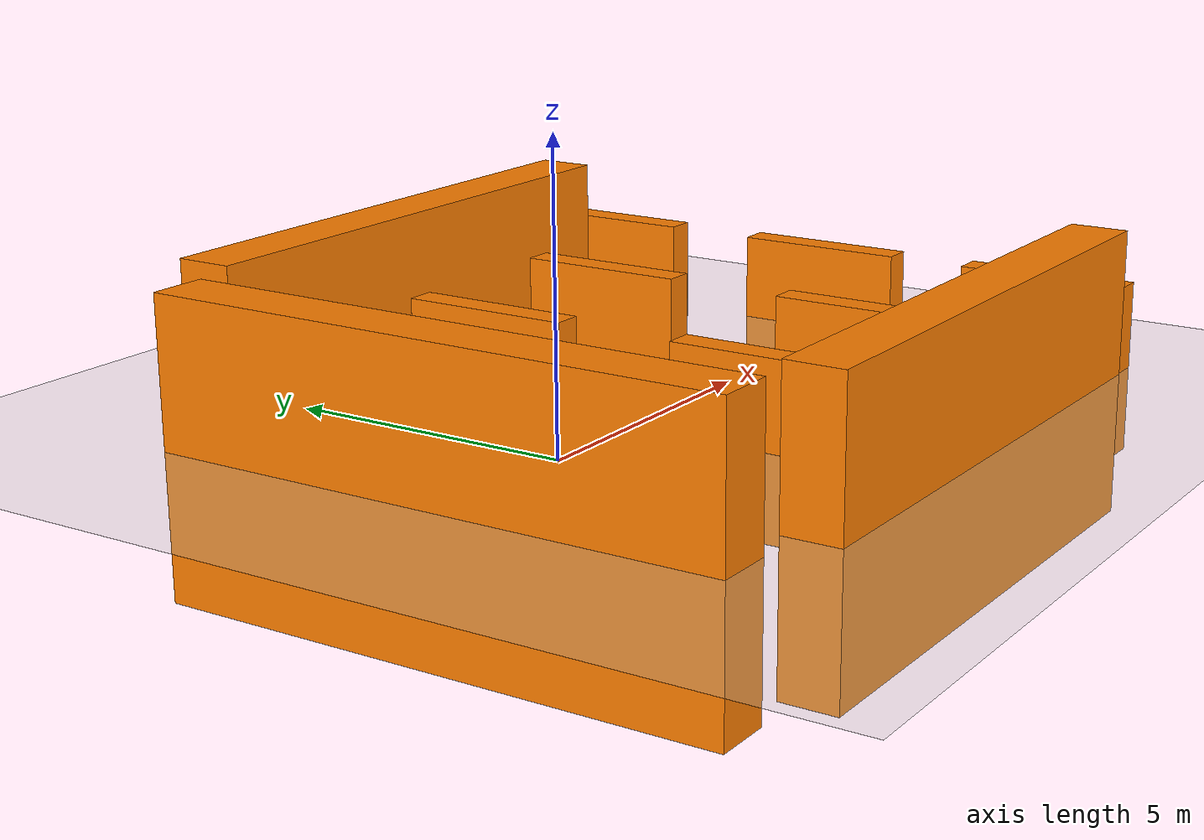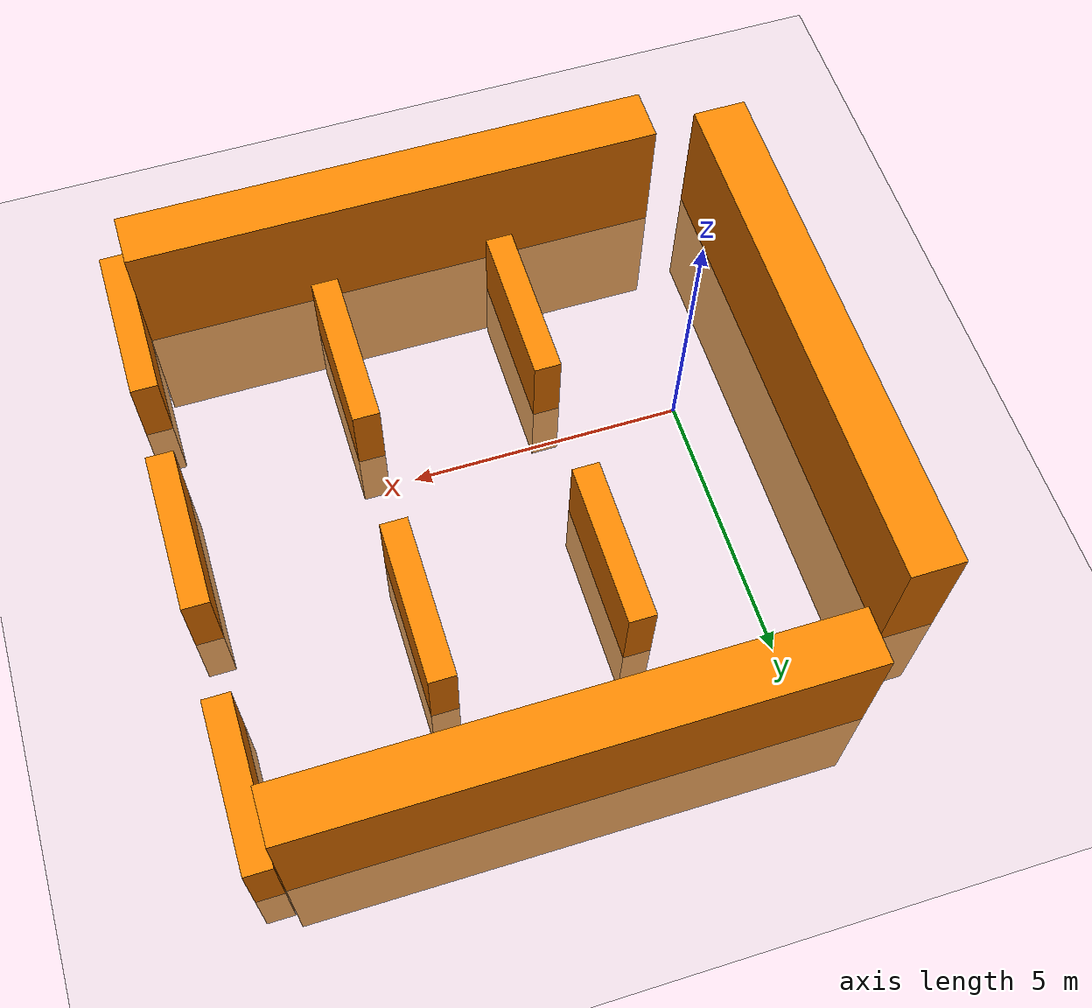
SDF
<sdf version="1.7">
 <world name="default">
  <light name="sun" type="directional">
   <pose>0 0 10 0 -0 0</pose>
   <diffuse>0.8 0.8 0.8 1</diffuse>
   <specular>0.2 0.2 0.2 1</specular>
   <attenuation>
    <range>1000</range>
    <constant>0.9</constant>
    <linear>0.01</linear>
    <quadratic>0.001</quadratic>
   </attenuation>
   <direction>-0.5 0.1 -0.9</direction>
   <spot><inner_angle>0</inner_angle><outer_angle>0</outer_angle><falloff>0</falloff></spot>
  </light>
  <model name="ground_plane">
   <static>1</static>
   <link name="link">
    <collision name="collision">
     <geometry><plane><normal>0 0 1</normal><size>100 100</size></plane></geometry>
     <surface>
      <contact><collide_bitmask>65535</collide_bitmask></contact>
      <friction><ode><mu>100</mu><mu2>50</mu2></ode></friction>
     </surface>
    </collision>
    <visual name="visual">
     <cast_shadows>0</cast_shadows>
     <geometry><plane><normal>0 0 1</normal><size>100 100</size></plane></geometry>
     <material>
      <script><uri>file://media/materials/scripts/gazebo.material</uri><name>Gazebo/Grey</name></script>
     </material>
    </visual>
   </link>
  </model>
  <gravity>0 0 -9.8</gravity>
  <magnetic_field>6e-06 2.3e-05 -4.2e-05</magnetic_field>
  <atmosphere type="adiabatic"/>
  <physics type="ode">
   <max_step_size>0.001</max_step_size>
   <real_time_factor>1</real_time_factor>
   <real_time_update_rate>1000</real_time_update_rate>
  </physics>
  <scene><ambient>0.4 0.4 0.4 1</ambient><background>0.7 0.7 0.7 1</background><shadows>1</shadows></scene>
  <audio><device>default</device></audio>
  <spherical_coordinates>
   <surface_model>EARTH_WGS84</surface_model>
   <latitude_deg>0</latitude_deg>
   <longitude_deg>0</longitude_deg>
   <elevation>0</elevation>
   <heading_deg>0</heading_deg>
  </spherical_coordinates>
  <model name="wall">
   <link name="link">
    <inertial>
     <mass>10000</mass>
     <inertia><ixx>1666.67</ixx><ixy>0</ixy><ixz>0</ixz><iyy>1666.67</iyy><iyz>0</iyz><izz>1666.67</izz></inertia>
    </inertial>
    <self_collide>1</self_collide>
    <kinematic>1</kinematic>
    <visual name="visual">
     <geometry><box><size>1 10 5</size></box></geometry>
     <material>
      <script><name>Gazebo/Grey</name><uri>file://media/materials/scripts/gazebo.material</uri></script>
      <shader type="pixel"><normal_map>__default__</normal_map></shader>
      <ambient>1 0.5 0 1</ambient>
      <diffuse>1 0.5 0 1</diffuse>
      <specular>0.2 0.1 0 1</specular>
      <emissive>0.1 0.05 0 1</emissive>
     </material>
    </visual>
    <collision name="collision">
     <geometry><box><size>1 10 5</size></box></geometry>
     <surface>
      <friction>
       <ode><mu>1</mu><mu2>1</mu2><fdir1>0 0 0</fdir1><slip1>0</slip1><slip2>0</slip2></ode>
       <torsional>
        <coefficient>1</coefficient>
        <patch_radius>0</patch_radius>
        <surface_radius>0</surface_radius>
        <use_patch_radius>1</use_patch_radius>
        <ode><slip>0</slip></ode>
       </torsional>
      </friction>
      <bounce><restitution_coefficient>0</restitution_coefficient><threshold>1e+06</threshold></bounce>
      <contact>
       <collide_without_contact>0</collide_without_contact>
       <collide_without_contact_bitmask>1</collide_without_contact_bitmask>
       <collide_bitmask>1</collide_bitmask>
       <ode>
        <soft_cfm>0</soft_cfm>
        <soft_erp>0.2</soft_erp>
        <kp>1e+13</kp>
        <kd>1</kd>
        <max_vel>0.01</max_vel>
        <min_depth>0</min_depth>
       </ode>
       <bullet>
        <split_impulse>1</split_impulse>
        <split_impulse_penetration_threshold>-0.01</split_impulse_penetration_threshold>
        <soft_cfm>0</soft_cfm>
        <soft_erp>0.2</soft_erp>
        <kp>1e+13</kp>
        <kd>1</kd>
       </bullet>
      </contact>
     </surface>
    </collision>
   </link>
   <static>0</static>
   <pose>-2.3342 0.361552 0 0 -0 0</pose>
  </model>
  <model name="wall_0">
   <link name="link">
    <inertial>
     <mass>10000</mass>
     <inertia><ixx>1666.67</ixx><ixy>0</ixy><ixz>0</ixz><iyy>1666.67</iyy><iyz>0</iyz><izz>1666.67</izz></inertia>
    </inertial>
    <self_collide>1</self_collide>
    <kinematic>1</kinematic>
    <visual name="visual">
     <geometry><box><size>1 10 5</size></box></geometry>
     <material>
      <script><name>Gazebo/Grey</name><uri>file://media/materials/scripts/gazebo.material</uri></script>
      <shader type="pixel"><normal_map>__default__</normal_map></shader>
      <ambient>1 0.5 0 1</ambient>
      <diffuse>1 0.5 0 1</diffuse>
      <specular>0.2 0.1 0 1</specular>
      <emissive>0.1 0.05 0 1</emissive>
     </material>
    </visual>
    <collision name="collision">
     <geometry><box><size>1 10 5</size></box></geometry>
     <surface>
      <friction>
       <ode><mu>1</mu><mu2>1</mu2><fdir1>0 0 0</fdir1><slip1>0</slip1><slip2>0</slip2></ode>
       <torsional>
        <coefficient>1</coefficient>
        <patch_radius>0</patch_radius>
        <surface_radius>0</surface_radius>
        <use_patch_radius>1</use_patch_radius>
        <ode><slip>0</slip></ode>
       </torsional>
      </friction>
      <bounce><restitution_coefficient>0</restitution_coefficient><threshold>1e+06</threshold></bounce>
      <contact>
       <collide_without_contact>0</collide_without_contact>
       <collide_without_contact_bitmask>1</collide_without_contact_bitmask>
       <collide_bitmask>1</collide_bitmask>
       <ode>
        <soft_cfm>0</soft_cfm>
        <soft_erp>0.2</soft_erp>
        <kp>1e+13</kp>
        <kd>1</kd>
        <max_vel>0.01</max_vel>
        <min_depth>0</min_depth>
       </ode>
       <bullet>
        <split_impulse>1</split_impulse>
        <split_impulse_penetration_threshold>-0.01</split_impulse_penetration_threshold>
        <soft_cfm>0</soft_cfm>
        <soft_erp>0.2</soft_erp>
        <kp>1e+13</kp>
        <kd>1</kd>
       </bullet>
      </contact>
     </surface>
    </collision>
   </link>
   <static>0</static>
   <pose>4.0098 6.11468 0 0 0 -1.57203</pose>
  </model>
  <model name="wall_0_clone">
   <link name="link">
    <inertial>
     <mass>10000</mass>
     <inertia><ixx>1666.67</ixx><ixy>0</ixy><ixz>0</ixz><iyy>1666.67</iyy><iyz>0</iyz><izz>1666.67</izz></inertia>
    </inertial>
    <self_collide>1</self_collide>
    <kinematic>1</kinematic>
    <visual name="visual">
     <geometry><box><size>1 10 5</size></box></geometry>
     <material>
      <script><name>Gazebo/Grey</name><uri>file://media/materials/scripts/gazebo.material</uri></script>
      <shader type="pixel"><normal_map>__default__</normal_map></shader>
      <ambient>1 0.5 0 1</ambient>
      <diffuse>1 0.5 0 1</diffuse>
      <specular>0.2 0.1 0 1</specular>
      <emissive>0.1 0.05 0 1</emissive>
     </material>
    </visual>
    <collision name="collision">
     <geometry><box><size>1 10 5</size></box></geometry>
     <surface>
      <friction>
       <ode><mu>1</mu><mu2>1</mu2><fdir1>0 0 0</fdir1><slip1>0</slip1><slip2>0</slip2></ode>
       <torsional>
        <coefficient>1</coefficient>
        <patch_radius>0</patch_radius>
        <surface_radius>0</surface_radius>
        <use_patch_radius>1</use_patch_radius>
        <ode><slip>0</slip></ode>
       </torsional>
      </friction>
      <bounce><restitution_coefficient>0</restitution_coefficient><threshold>1e+06</threshold></bounce>
      <contact>
       <collide_without_contact>0</collide_without_contact>
       <collide_without_contact_bitmask>1</collide_without_contact_bitmask>
       <collide_bitmask>1</collide_bitmask>
       <ode>
        <soft_cfm>0</soft_cfm>
        <soft_erp>0.2</soft_erp>
        <kp>1e+13</kp>
        <kd>1</kd>
        <max_vel>0.01</max_vel>
        <min_depth>0</min_depth>
       </ode>
       <bullet>
        <split_impulse>1</split_impulse>
        <split_impulse_penetration_threshold>-0.01</split_impulse_penetration_threshold>
        <soft_cfm>0</soft_cfm>
        <soft_erp>0.2</soft_erp>
        <kp>1e+13</kp>
        <kd>1</kd>
       </bullet>
      </contact>
     </surface>
    </collision>
   </link>
   <static>0</static>
   <pose>4.0029 -4.90132 0 0 0 -1.57203</pose>
  </model>
  <model name="shelf_0.1">
   <link name="link">
    <inertial>
     <mass>10000</mass>
     <inertia><ixx>1666.67</ixx><ixy>0</ixy><ixz>0</ixz><iyy>1666.67</iyy><iyz>0</iyz><izz>1666.67</izz></inertia>
    </inertial>
    <self_collide>1</self_collide>
    <kinematic>1</kinematic>
    <visual name="visual">
     <geometry><box><size>0.5 3 3</size></box></geometry>
     <material>
      <script><name>Gazebo/Grey</name><uri>file://media/materials/scripts/gazebo.material</uri></script>
      <shader type="pixel"><normal_map>__default__</normal_map></shader>
      <ambient>1 0.5 0 1</ambient>
      <diffuse>1 0.5 0 1</diffuse>
      <specular>0.2 0.1 0 1</specular>
      <emissive>0.1 0.05 0 1</emissive>
     </material>
    </visual>
    <collision name="collision">
     <geometry><box><size>0.5 3 3</size></box></geometry>
     <surface>
      <friction>
       <ode><mu>1</mu><mu2>1</mu2><fdir1>0 0 0</fdir1><slip1>0</slip1><slip2>0</slip2></ode>
       <torsional>
        <coefficient>1</coefficient>
        <patch_radius>0</patch_radius>
        <surface_radius>0</surface_radius>
        <use_patch_radius>1</use_patch_radius>
        <ode><slip>0</slip></ode>
       </torsional>
      </friction>
      <bounce><restitution_coefficient>0</restitution_coefficient><threshold>1e+06</threshold></bounce>
      <contact>
       <collide_without_contact>0</collide_without_contact>
       <collide_without_contact_bitmask>1</collide_without_contact_bitmask>
       <collide_bitmask>1</collide_bitmask>
       <ode>
        <soft_cfm>0</soft_cfm>
        <soft_erp>0.2</soft_erp>
        <kp>1e+13</kp>
        <kd>1</kd>
        <max_vel>0.01</max_vel>
        <min_depth>0</min_depth>
       </ode>
       <bullet>
        <split_impulse>1</split_impulse>
        <split_impulse_penetration_threshold>-0.01</split_impulse_penetration_threshold>
        <soft_cfm>0</soft_cfm>
        <soft_erp>0.2</soft_erp>
        <kp>1e+13</kp>
        <kd>1</kd>
       </bullet>
      </contact>
     </surface>
    </collision>
   </link>
   <static>0</static>
   <pose>9.25151 -3.88543 0 0 -0 0</pose>
  </model>
  <model name="shelf_0.1_clone">
   <link name="link">
    <inertial>
     <mass>10000</mass>
     <inertia><ixx>1666.67</ixx><ixy>0</ixy><ixz>0</ixz><iyy>1666.67</iyy><iyz>0</iyz><izz>1666.67</izz></inertia>
    </inertial>
    <self_collide>1</self_collide>
    <kinematic>1</kinematic>
    <visual name="visual">
     <geometry><box><size>0.5 3 3</size></box></geometry>
     <material>
      <script><name>Gazebo/Grey</name><uri>file://media/materials/scripts/gazebo.material</uri></script>
      <shader type="pixel"><normal_map>__default__</normal_map></shader>
      <ambient>1 0.5 0 1</ambient>
      <diffuse>1 0.5 0 1</diffuse>
      <specular>0.2 0.1 0 1</specular>
      <emissive>0.1 0.05 0 1</emissive>
     </material>
    </visual>
    <collision name="collision">
     <geometry><box><size>0.5 3 3</size></box></geometry>
     <surface>
      <friction>
       <ode><mu>1</mu><mu2>1</mu2><fdir1>0 0 0</fdir1><slip1>0</slip1><slip2>0</slip2></ode>
       <torsional>
        <coefficient>1</coefficient>
        <patch_radius>0</patch_radius>
        <surface_radius>0</surface_radius>
        <use_patch_radius>1</use_patch_radius>
        <ode><slip>0</slip></ode>
       </torsional>
      </friction>
      <bounce><restitution_coefficient>0</restitution_coefficient><threshold>1e+06</threshold></bounce>
      <contact>
       <collide_without_contact>0</collide_without_contact>
       <collide_without_contact_bitmask>1</collide_without_contact_bitmask>
       <collide_bitmask>1</collide_bitmask>
       <ode>
        <soft_cfm>0</soft_cfm>
        <soft_erp>0.2</soft_erp>
        <kp>1e+13</kp>
        <kd>1</kd>
        <max_vel>0.01</max_vel>
        <min_depth>0</min_depth>
       </ode>
       <bullet>
        <split_impulse>1</split_impulse>
        <split_impulse_penetration_threshold>-0.01</split_impulse_penetration_threshold>
        <soft_cfm>0</soft_cfm>
        <soft_erp>0.2</soft_erp>
        <kp>1e+13</kp>
        <kd>1</kd>
       </bullet>
      </contact>
     </surface>
    </collision>
   </link>
   <static>0</static>
   <pose>9.25751 0.50107 0 0 -0 0</pose>
  </model>
  <model name="shelf_0.1_clone_0">
   <link name="link">
    <inertial>
     <mass>10000</mass>
     <inertia><ixx>1666.67</ixx><ixy>0</ixy><ixz>0</ixz><iyy>1666.67</iyy><iyz>0</iyz><izz>1666.67</izz></inertia>
    </inertial>
    <self_collide>1</self_collide>
    <kinematic>1</kinematic>
    <visual name="visual">
     <geometry><box><size>0.5 3 3</size></box></geometry>
     <material>
      <script><name>Gazebo/Grey</name><uri>file://media/materials/scripts/gazebo.material</uri></script>
      <shader type="pixel"><normal_map>__default__</normal_map></shader>
      <ambient>1 0.5 0 1</ambient>
      <diffuse>1 0.5 0 1</diffuse>
      <specular>0.2 0.1 0 1</specular>
      <emissive>0.1 0.05 0 1</emissive>
     </material>
    </visual>
    <collision name="collision">
     <geometry><box><size>0.5 3 3</size></box></geometry>
     <surface>
      <friction>
       <ode><mu>1</mu><mu2>1</mu2><fdir1>0 0 0</fdir1><slip1>0</slip1><slip2>0</slip2></ode>
       <torsional>
        <coefficient>1</coefficient>
        <patch_radius>0</patch_radius>
        <surface_radius>0</surface_radius>
        <use_patch_radius>1</use_patch_radius>
        <ode><slip>0</slip></ode>
       </torsional>
      </friction>
      <bounce><restitution_coefficient>0</restitution_coefficient><threshold>1e+06</threshold></bounce>
      <contact>
       <collide_without_contact>0</collide_without_contact>
       <collide_without_contact_bitmask>1</collide_without_contact_bitmask>
       <collide_bitmask>1</collide_bitmask>
       <ode>
        <soft_cfm>0</soft_cfm>
        <soft_erp>0.2</soft_erp>
        <kp>1e+13</kp>
        <kd>1</kd>
        <max_vel>0.01</max_vel>
        <min_depth>0</min_depth>
       </ode>
       <bullet>
        <split_impulse>1</split_impulse>
        <split_impulse_penetration_threshold>-0.01</split_impulse_penetration_threshold>
        <soft_cfm>0</soft_cfm>
        <soft_erp>0.2</soft_erp>
        <kp>1e+13</kp>
        <kd>1</kd>
       </bullet>
      </contact>
     </surface>
    </collision>
   </link>
   <static>0</static>
   <pose>9.27483 5.1375 0 0 -0 0</pose>
  </model>
  <model name="shelf_0.1_clone_1">
   <link name="link">
    <inertial>
     <mass>10000</mass>
     <inertia><ixx>1666.67</ixx><ixy>0</ixy><ixz>0</ixz><iyy>1666.67</iyy><iyz>0</iyz><izz>1666.67</izz></inertia>
    </inertial>
    <self_collide>1</self_collide>
    <kinematic>1</kinematic>
    <visual name="visual">
     <geometry><box><size>0.5 3 3</size></box></geometry>
     <material>
      <script><name>Gazebo/Grey</name><uri>file://media/materials/scripts/gazebo.material</uri></script>
      <shader type="pixel"><normal_map>__default__</normal_map></shader>
      <ambient>1 0.5 0 1</ambient>
      <diffuse>1 0.5 0 1</diffuse>
      <specular>0.2 0.1 0 1</specular>
      <emissive>0.1 0.05 0 1</emissive>
     </material>
    </visual>
    <collision name="collision">
     <geometry><box><size>0.5 3 3</size></box></geometry>
     <surface>
      <friction>
       <ode><mu>1</mu><mu2>1</mu2><fdir1>0 0 0</fdir1><slip1>0</slip1><slip2>0</slip2></ode>
       <torsional>
        <coefficient>1</coefficient>
        <patch_radius>0</patch_radius>
        <surface_radius>0</surface_radius>
        <use_patch_radius>1</use_patch_radius>
        <ode><slip>0</slip></ode>
       </torsional>
      </friction>
      <bounce><restitution_coefficient>0</restitution_coefficient><threshold>1e+06</threshold></bounce>
      <contact>
       <collide_without_contact>0</collide_without_contact>
       <collide_without_contact_bitmask>1</collide_without_contact_bitmask>
       <collide_bitmask>1</collide_bitmask>
       <ode>
        <soft_cfm>0</soft_cfm>
        <soft_erp>0.2</soft_erp>
        <kp>1e+13</kp>
        <kd>1</kd>
        <max_vel>0.01</max_vel>
        <min_depth>0</min_depth>
       </ode>
       <bullet>
        <split_impulse>1</split_impulse>
        <split_impulse_penetration_threshold>-0.01</split_impulse_penetration_threshold>
        <soft_cfm>0</soft_cfm>
        <soft_erp>0.2</soft_erp>
        <kp>1e+13</kp>
        <kd>1</kd>
       </bullet>
      </contact>
     </surface>
    </collision>
   </link>
   <static>0</static>
   <pose>2.27687 -2.20592 0 0 -0 0</pose>
  </model>
  <model name="shelf_0.1_clone_1_clone">
   <link name="link">
    <inertial>
     <mass>10000</mass>
     <inertia><ixx>1666.67</ixx><ixy>0</ixy><ixz>0</ixz><iyy>1666.67</iyy><iyz>0</iyz><izz>1666.67</izz></inertia>
    </inertial>
    <self_collide>1</self_collide>
    <kinematic>1</kinematic>
    <visual name="visual">
     <geometry><box><size>0.5 3 3</size></box></geometry>
     <material>
      <script><name>Gazebo/Grey</name><uri>file://media/materials/scripts/gazebo.material</uri></script>
      <shader type="pixel"><normal_map>__default__</normal_map></shader>
      <ambient>1 0.5 0 1</ambient>
      <diffuse>1 0.5 0 1</diffuse>
      <specular>0.2 0.1 0 1</specular>
      <emissive>0.1 0.05 0 1</emissive>
     </material>
    </visual>
    <collision name="collision">
     <geometry><box><size>0.5 3 3</size></box></geometry>
     <surface>
      <friction>
       <ode><mu>1</mu><mu2>1</mu2><fdir1>0 0 0</fdir1><slip1>0</slip1><slip2>0</slip2></ode>
       <torsional>
        <coefficient>1</coefficient>
        <patch_radius>0</patch_radius>
        <surface_radius>0</surface_radius>
        <use_patch_radius>1</use_patch_radius>
        <ode><slip>0</slip></ode>
       </torsional>
      </friction>
      <bounce><restitution_coefficient>0</restitution_coefficient><threshold>1e+06</threshold></bounce>
      <contact>
       <collide_without_contact>0</collide_without_contact>
       <collide_without_contact_bitmask>1</collide_without_contact_bitmask>
       <collide_bitmask>1</collide_bitmask>
       <ode>
        <soft_cfm>0</soft_cfm>
        <soft_erp>0.2</soft_erp>
        <kp>1e+13</kp>
        <kd>1</kd>
        <max_vel>0.01</max_vel>
        <min_depth>0</min_depth>
       </ode>
       <bullet>
        <split_impulse>1</split_impulse>
        <split_impulse_penetration_threshold>-0.01</split_impulse_penetration_threshold>
        <soft_cfm>0</soft_cfm>
        <soft_erp>0.2</soft_erp>
        <kp>1e+13</kp>
        <kd>1</kd>
       </bullet>
      </contact>
     </surface>
    </collision>
   </link>
   <static>0</static>
   <pose>2.26851 2.88967 0 0 -0 0</pose>
  </model>
  <model name="shelf_0.1_clone_1_clone_0">
   <link name="link">
    <inertial>
     <mass>10000</mass>
     <inertia><ixx>1666.67</ixx><ixy>0</ixy><ixz>0</ixz><iyy>1666.67</iyy><iyz>0</iyz><izz>1666.67</izz></inertia>
    </inertial>
    <self_collide>1</self_collide>
    <kinematic>1</kinematic>
    <visual name="visual">
     <geometry><box><size>0.5 3 3</size></box></geometry>
     <material>
      <script><name>Gazebo/Grey</name><uri>file://media/materials/scripts/gazebo.material</uri></script>
      <shader type="pixel"><normal_map>__default__</normal_map></shader>
      <ambient>1 0.5 0 1</ambient>
      <diffuse>1 0.5 0 1</diffuse>
      <specular>0.2 0.1 0 1</specular>
      <emissive>0.1 0.05 0 1</emissive>
     </material>
    </visual>
    <collision name="collision">
     <geometry><box><size>0.5 3 3</size></box></geometry>
     <surface>
      <friction>
       <ode><mu>1</mu><mu2>1</mu2><fdir1>0 0 0</fdir1><slip1>0</slip1><slip2>0</slip2></ode>
       <torsional>
        <coefficient>1</coefficient>
        <patch_radius>0</patch_radius>
        <surface_radius>0</surface_radius>
        <use_patch_radius>1</use_patch_radius>
        <ode><slip>0</slip></ode>
       </torsional>
      </friction>
      <bounce><restitution_coefficient>0</restitution_coefficient><threshold>1e+06</threshold></bounce>
      <contact>
       <collide_without_contact>0</collide_without_contact>
       <collide_without_contact_bitmask>1</collide_without_contact_bitmask>
       <collide_bitmask>1</collide_bitmask>
       <ode>
        <soft_cfm>0</soft_cfm>
        <soft_erp>0.2</soft_erp>
        <kp>1e+13</kp>
        <kd>1</kd>
        <max_vel>0.01</max_vel>
        <min_depth>0</min_depth>
       </ode>
       <bullet>
        <split_impulse>1</split_impulse>
        <split_impulse_penetration_threshold>-0.01</split_impulse_penetration_threshold>
        <soft_cfm>0</soft_cfm>
        <soft_erp>0.2</soft_erp>
        <kp>1e+13</kp>
        <kd>1</kd>
       </bullet>
      </contact>
     </surface>
    </collision>
   </link>
   <static>0</static>
   <pose>5.63632 -2.17806 0 0 -0 0</pose>
  </model>
  <model name="shelf_0.1_clone_1_clone_1">
   <link name="link">
    <inertial>
     <mass>10000</mass>
     <inertia><ixx>1666.67</ixx><ixy>0</ixy><ixz>0</ixz><iyy>1666.67</iyy><iyz>0</iyz><izz>1666.67</izz></inertia>
    </inertial>
    <self_collide>1</self_collide>
    <kinematic>1</kinematic>
    <visual name="visual">
     <geometry><box><size>0.5 3 3</size></box></geometry>
     <material>
      <script><name>Gazebo/Grey</name><uri>file://media/materials/scripts/gazebo.material</uri></script>
      <shader type="pixel"><normal_map>__default__</normal_map></shader>
      <ambient>1 0.5 0 1</ambient>
      <diffuse>1 0.5 0 1</diffuse>
      <specular>0.2 0.1 0 1</specular>
      <emissive>0.1 0.05 0 1</emissive>
     </material>
    </visual>
    <collision name="collision">
     <geometry><box><size>0.5 3 3</size></box></geometry>
     <surface>
      <friction>
       <ode><mu>1</mu><mu2>1</mu2><fdir1>0 0 0</fdir1><slip1>0</slip1><slip2>0</slip2></ode>
       <torsional>
        <coefficient>1</coefficient>
        <patch_radius>0</patch_radius>
        <surface_radius>0</surface_radius>
        <use_patch_radius>1</use_patch_radius>
        <ode><slip>0</slip></ode>
       </torsional>
      </friction>
      <bounce><restitution_coefficient>0</restitution_coefficient><threshold>1e+06</threshold></bounce>
      <contact>
       <collide_without_contact>0</collide_without_contact>
       <collide_without_contact_bitmask>1</collide_without_contact_bitmask>
       <collide_bitmask>1</collide_bitmask>
       <ode>
        <soft_cfm>0</soft_cfm>
        <soft_erp>0.2</soft_erp>
        <kp>1e+13</kp>
        <kd>1</kd>
        <max_vel>0.01</max_vel>
        <min_depth>0</min_depth>
       </ode>
       <bullet>
        <split_impulse>1</split_impulse>
        <split_impulse_penetration_threshold>-0.01</split_impulse_penetration_threshold>
        <soft_cfm>0</soft_cfm>
        <soft_erp>0.2</soft_erp>
        <kp>1e+13</kp>
        <kd>1</kd>
       </bullet>
      </contact>
     </surface>
    </collision>
   </link>
   <static>0</static>
   <pose>5.71863 2.93994 0 0 -0 0</pose>
  </model>
 </world>
</sdf>
